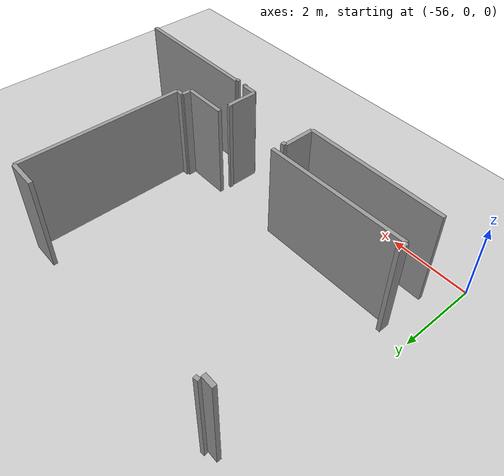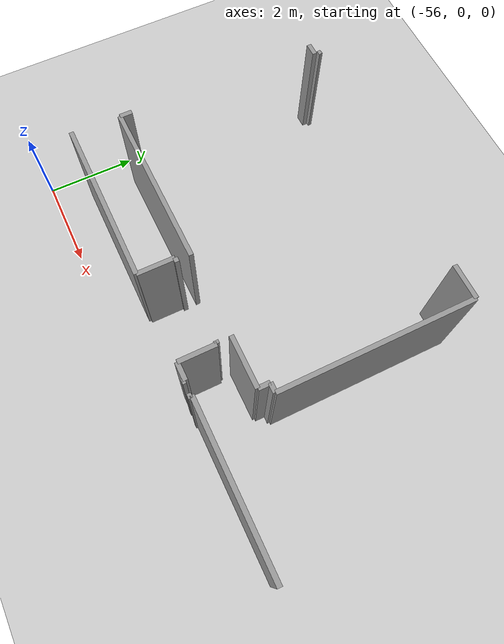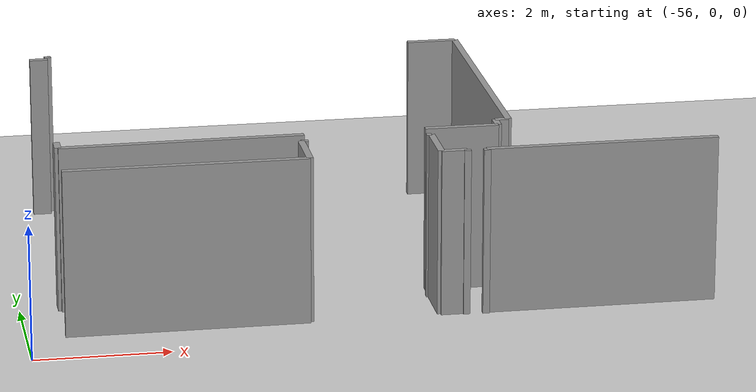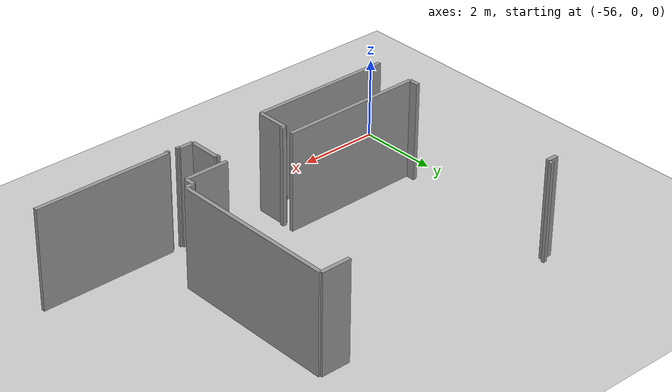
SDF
<sdf version="1.6">
 <world name="default">
  <model name="ground_plane">
   <static>1</static>
   <link name="link">
    <collision name="collision">
     <geometry><plane><normal>0 0 1</normal><size>100 100</size></plane></geometry>
     <surface><friction><ode><mu>100</mu><mu2>50</mu2></ode></friction></surface>
    </collision>
    <visual name="visual">
     <cast_shadows>0</cast_shadows>
     <geometry><plane><normal>0 0 1</normal><size>100 100</size></plane></geometry>
     <material>
      <script><uri>file://media/materials/scripts/gazebo.material</uri><name>Gazebo/Grey</name></script>
     </material>
    </visual>
   </link>
  </model>
  <model name="50057024">
   <static>1</static>
   <link name="Wall_53">
    <collision name="Wall_53_Collision">
     <geometry><box><size>0.0800269373903 0.1 2.5</size></box></geometry>
     <pose>0.0400134686951 0 1.25 0 0 0</pose>
    </collision>
    <visual name="Wall_53_Visual">
     <pose>0.0400134686951 0 1.25 0 0 0</pose>
     <geometry><box><size>0.0800269373903 0.1 2.5</size></box></geometry>
     <material>
      <script><uri>file://media/materials/scripts/gazebo.material</uri><name>Gazebo/Grey</name></script>
      <ambient>1 1 1 1</ambient>
     </material>
    </visual>
    <pose>1.05499438833 -18.0238036359 0 0 0 1.72031313532</pose>
   </link>
   <link name="Wall_73">
    <collision name="Wall_73_Collision">
     <geometry><box><size>0.265175293424 0.1 2.5</size></box></geometry>
     <pose>0.132587646712 0 1.25 0 0 0</pose>
    </collision>
    <visual name="Wall_73_Visual">
     <pose>0.132587646712 0 1.25 0 0 0</pose>
     <geometry><box><size>0.265175293424 0.1 2.5</size></box></geometry>
     <material>
      <script><uri>file://media/materials/scripts/gazebo.material</uri><name>Gazebo/Grey</name></script>
      <ambient>1 1 1 1</ambient>
     </material>
    </visual>
    <pose>0.76103153316 -22.5596834636 0 0 0 1.57079632679</pose>
   </link>
   <link name="Wall_74">
    <collision name="Wall_74_Collision">
     <geometry><box><size>0.27417933256 0.1 2.5</size></box></geometry>
     <pose>0.13708966628 0 1.25 0 0 0</pose>
    </collision>
    <visual name="Wall_74_Visual">
     <pose>0.13708966628 0 1.25 0 0 0</pose>
     <geometry><box><size>0.27417933256 0.1 2.5</size></box></geometry>
     <material>
      <script><uri>file://media/materials/scripts/gazebo.material</uri><name>Gazebo/Grey</name></script>
      <ambient>1 1 1 1</ambient>
     </material>
    </visual>
    <pose>0.76103153316 -18.0968504886 0 0 0 0.0</pose>
   </link>
   <link name="Wall_75">
    <collision name="Wall_75_Collision">
     <geometry><box><size>0.750252049687 0.1 2.5</size></box></geometry>
     <pose>0.375126024844 0 1.25 0 0 0</pose>
    </collision>
    <visual name="Wall_75_Visual">
     <pose>0.375126024844 0 1.25 0 0 0</pose>
     <geometry><box><size>0.750252049687 0.1 2.5</size></box></geometry>
     <material>
      <script><uri>file://media/materials/scripts/gazebo.material</uri><name>Gazebo/Grey</name></script>
      <ambient>1 1 1 1</ambient>
     </material>
    </visual>
    <pose>6.68759154635 -18.0968504886 0 0 0 0.0</pose>
   </link>
   <link name="Wall_76">
    <collision name="Wall_76_Collision">
     <geometry><box><size>4.17368918311 0.1 2.5</size></box></geometry>
     <pose>2.08684459155 0 1.25 0 0 0</pose>
    </collision>
    <visual name="Wall_76_Visual">
     <pose>2.08684459155 0 1.25 0 0 0</pose>
     <geometry><box><size>4.17368918311 0.1 2.5</size></box></geometry>
     <material>
      <script><uri>file://media/materials/scripts/gazebo.material</uri><name>Gazebo/Grey</name></script>
      <ambient>1 1 1 1</ambient>
     </material>
    </visual>
    <pose>7.43784359604 -18.0968504886 0 0 0 -1.57079632679</pose>
   </link>
   <link name="Wall_77">
    <collision name="Wall_77_Collision">
     <geometry><box><size>0.200117940231 0.1 2.5</size></box></geometry>
     <pose>0.100058970115 0 1.25 0 0 0</pose>
    </collision>
    <visual name="Wall_77_Visual">
     <pose>0.100058970115 0 1.25 0 0 0</pose>
     <geometry><box><size>0.200117940231 0.1 2.5</size></box></geometry>
     <material>
      <script><uri>file://media/materials/scripts/gazebo.material</uri><name>Gazebo/Grey</name></script>
      <ambient>1 1 1 1</ambient>
     </material>
    </visual>
    <pose>7.43784359604 -22.2705396717 0 0 0 3.14159265359</pose>
   </link>
   <link name="Wall_78">
    <collision name="Wall_78_Collision">
     <geometry><box><size>0.250084016562 0.1 2.5</size></box></geometry>
     <pose>0.125042008281 0 1.25 0 0 0</pose>
    </collision>
    <visual name="Wall_78_Visual">
     <pose>0.125042008281 0 1.25 0 0 0</pose>
     <geometry><box><size>0.250084016562 0.1 2.5</size></box></geometry>
     <material>
      <script><uri>file://media/materials/scripts/gazebo.material</uri><name>Gazebo/Grey</name></script>
      <ambient>1 1 1 1</ambient>
     </material>
    </visual>
    <pose>7.2377256558 -22.2705396717 0 0 0 -1.57079632679</pose>
   </link>
   <link name="Wall_79">
    <collision name="Wall_79_Collision">
     <geometry><box><size>1.0922787194 0.1 2.5</size></box></geometry>
     <pose>0.546139359699 0 1.25 0 0 0</pose>
    </collision>
    <visual name="Wall_79_Visual">
     <pose>0.546139359699 0 1.25 0 0 0</pose>
     <geometry><box><size>1.0922787194 0.1 2.5</size></box></geometry>
     <material>
      <script><uri>file://media/materials/scripts/gazebo.material</uri><name>Gazebo/Grey</name></script>
      <ambient>1 1 1 1</ambient>
     </material>
    </visual>
    <pose>7.2377256558 -22.5206236882 0 0 0 3.14159265359</pose>
   </link>
   <link name="Wall_80">
    <collision name="Wall_80_Collision">
     <geometry><box><size>3.59231670295 0.1 2.5</size></box></geometry>
     <pose>1.79615835148 0 1.25 0 0 0</pose>
    </collision>
    <visual name="Wall_80_Visual">
     <pose>1.79615835148 0 1.25 0 0 0</pose>
     <geometry><box><size>3.59231670295 0.1 2.5</size></box></geometry>
     <material>
      <script><uri>file://media/materials/scripts/gazebo.material</uri><name>Gazebo/Grey</name></script>
      <ambient>1 1 1 1</ambient>
     </material>
    </visual>
    <pose>4.35313587856 -22.5206236882 0 0 0 -3.13071929572</pose>
   </link>
   <link name="Wall_82">
    <collision name="Wall_82_Collision">
     <geometry><box><size>3.56014634734 0.1 2.5</size></box></geometry>
     <pose>1.78007317367 0 1.25 0 0 0</pose>
    </collision>
    <visual name="Wall_82_Visual">
     <pose>1.78007317367 0 1.25 0 0 0</pose>
     <geometry><box><size>3.56014634734 0.1 2.5</size></box></geometry>
     <material>
      <script><uri>file://media/materials/scripts/gazebo.material</uri><name>Gazebo/Grey</name></script>
      <ambient>1 1 1 1</ambient>
     </material>
    </visual>
    <pose>0.709163195039 -23.6208919071 0 0 0 0.0</pose>
   </link>
   <link name="Wall_83">
    <collision name="Wall_83_Collision">
     <geometry><box><size>0.800725395829 0.1 2.5</size></box></geometry>
     <pose>0.400362697914 0 1.25 0 0 0</pose>
    </collision>
    <visual name="Wall_83_Visual">
     <pose>0.400362697914 0 1.25 0 0 0</pose>
     <geometry><box><size>0.800725395829 0.1 2.5</size></box></geometry>
     <material>
      <script><uri>file://media/materials/scripts/gazebo.material</uri><name>Gazebo/Grey</name></script>
      <ambient>1 1 1 1</ambient>
     </material>
    </visual>
    <pose>4.26930954238 -23.6208919071 0 0 0 1.57079632679</pose>
   </link>
   <link name="Wall_84">
    <collision name="Wall_84_Collision">
     <geometry><box><size>0.10221486681 0.1 2.5</size></box></geometry>
     <pose>0.051107433405 0 1.25 0 0 0</pose>
    </collision>
    <visual name="Wall_84_Visual">
     <pose>0.051107433405 0 1.25 0 0 0</pose>
     <geometry><box><size>0.10221486681 0.1 2.5</size></box></geometry>
     <material>
      <script><uri>file://media/materials/scripts/gazebo.material</uri><name>Gazebo/Grey</name></script>
      <ambient>1 1 1 1</ambient>
     </material>
    </visual>
    <pose>4.26930954238 -22.8201665113 0 0 0 0.0</pose>
   </link>
   <link name="Wall_85">
    <collision name="Wall_85_Collision">
     <geometry><box><size>0.0725395828974 0.1 2.5</size></box></geometry>
     <pose>0.0362697914487 0 1.25 0 0 0</pose>
    </collision>
    <visual name="Wall_85_Visual">
     <pose>0.0362697914487 0 1.25 0 0 0</pose>
     <geometry><box><size>0.0725395828974 0.1 2.5</size></box></geometry>
     <material>
      <script><uri>file://media/materials/scripts/gazebo.material</uri><name>Gazebo/Grey</name></script>
      <ambient>1 1 1 1</ambient>
     </material>
    </visual>
    <pose>6.11171349401 -22.8201665113 0 0 0 0.0</pose>
   </link>
   <link name="Wall_86">
    <collision name="Wall_86_Collision">
     <geometry><box><size>0.790326364714 0.1 2.5</size></box></geometry>
     <pose>0.395163182357 0 1.25 0 0 0</pose>
    </collision>
    <visual name="Wall_86_Visual">
     <pose>0.395163182357 0 1.25 0 0 0</pose>
     <geometry><box><size>0.790326364714 0.1 2.5</size></box></geometry>
     <material>
      <script><uri>file://media/materials/scripts/gazebo.material</uri><name>Gazebo/Grey</name></script>
      <ambient>1 1 1 1</ambient>
     </material>
    </visual>
    <pose>6.18425307691 -22.8201665113 0 0 0 -1.57079632679</pose>
   </link>
   <link name="Wall_87">
    <collision name="Wall_87_Collision">
     <geometry><box><size>0.377028286633 0.1 2.5</size></box></geometry>
     <pose>0.188514143316 0 1.25 0 0 0</pose>
    </collision>
    <visual name="Wall_87_Visual">
     <pose>0.188514143316 0 1.25 0 0 0</pose>
     <geometry><box><size>0.377028286633 0.1 2.5</size></box></geometry>
     <material>
      <script><uri>file://media/materials/scripts/gazebo.material</uri><name>Gazebo/Grey</name></script>
      <ambient>1 1 1 1</ambient>
     </material>
    </visual>
    <pose>6.18425307691 -23.610492876 0 0 0 0.0</pose>
   </link>
   <link name="Wall_88">
    <collision name="Wall_88_Collision">
     <geometry><box><size>0.0725395828974 0.1 2.5</size></box></geometry>
     <pose>0.0362697914487 0 1.25 0 0 0</pose>
    </collision>
    <visual name="Wall_88_Visual">
     <pose>0.0362697914487 0 1.25 0 0 0</pose>
     <geometry><box><size>0.0725395828974 0.1 2.5</size></box></geometry>
     <material>
      <script><uri>file://media/materials/scripts/gazebo.material</uri><name>Gazebo/Grey</name></script>
      <ambient>1 1 1 1</ambient>
     </material>
    </visual>
    <pose>6.56128136354 -23.610492876 0 0 0 -1.57079632679</pose>
   </link>
   <link name="Wall_121">
    <collision name="Wall_121_Collision">
     <geometry><box><size>0.0820508918437 0.1 2.5</size></box></geometry>
     <pose>0.0410254459219 0 1.25 0 0 0</pose>
    </collision>
    <visual name="Wall_121_Visual">
     <pose>0.0410254459219 0 1.25 0 0 0</pose>
     <geometry><box><size>0.0820508918437 0.1 2.5</size></box></geometry>
     <material>
      <script><uri>file://media/materials/scripts/gazebo.material</uri><name>Gazebo/Grey</name></script>
      <ambient>1 1 1 1</ambient>
     </material>
    </visual>
    <pose>6.84624017957 -23.6966019264 0 0 0 1.57079632679</pose>
   </link>
   <link name="Wall_122">
    <collision name="Wall_122_Collision">
     <geometry><box><size>3.42673438719 0.1 2.5</size></box></geometry>
     <pose>1.71336719359 0 1.25 0 0 0</pose>
    </collision>
    <visual name="Wall_122_Visual">
     <pose>1.71336719359 0 1.25 0 0 0</pose>
     <geometry><box><size>3.42673438719 0.1 2.5</size></box></geometry>
     <material>
      <script><uri>file://media/materials/scripts/gazebo.material</uri><name>Gazebo/Grey</name></script>
      <ambient>1 1 1 1</ambient>
     </material>
    </visual>
    <pose>6.84624017957 -23.6145510345 0 0 0 0.0</pose>
   </link>
   <pose>-56.15 24.49446315 0 0 0 0</pose>
  </model>
 </world>
</sdf>
